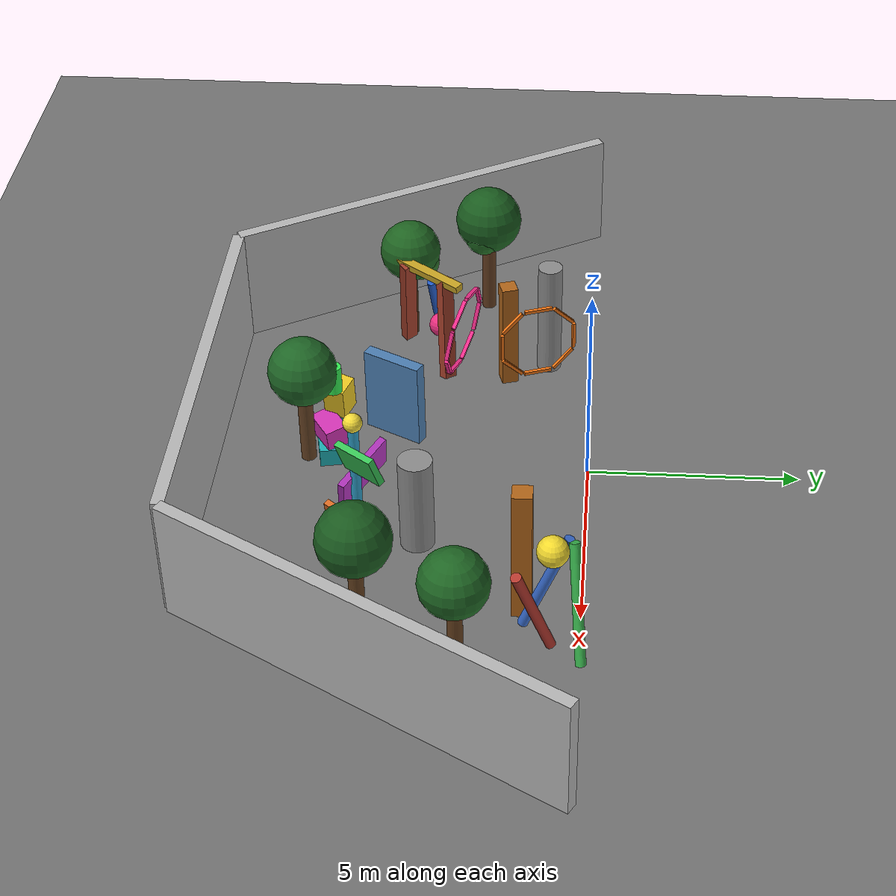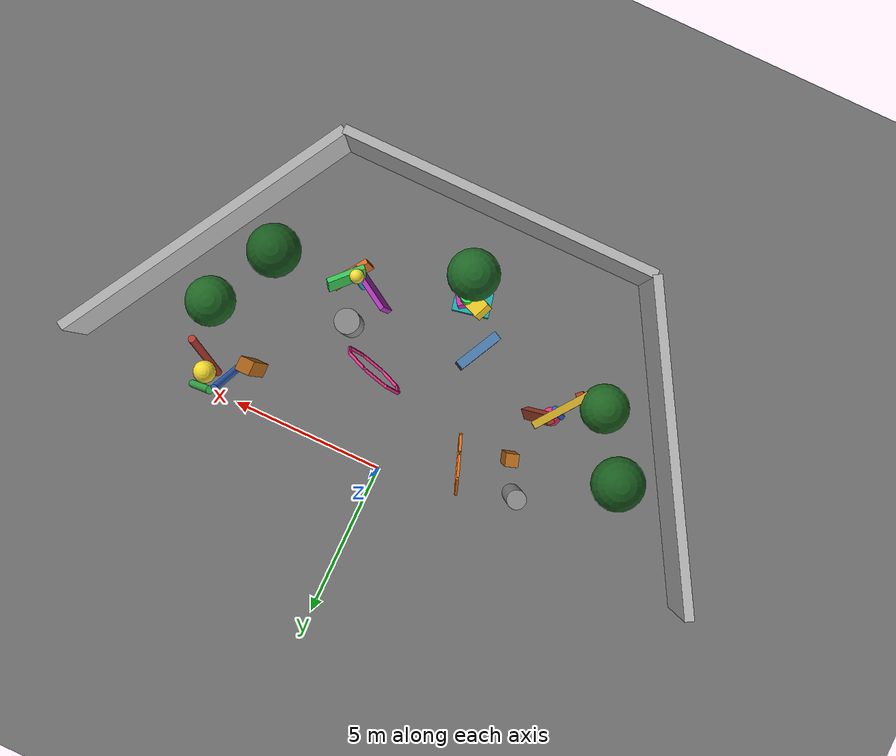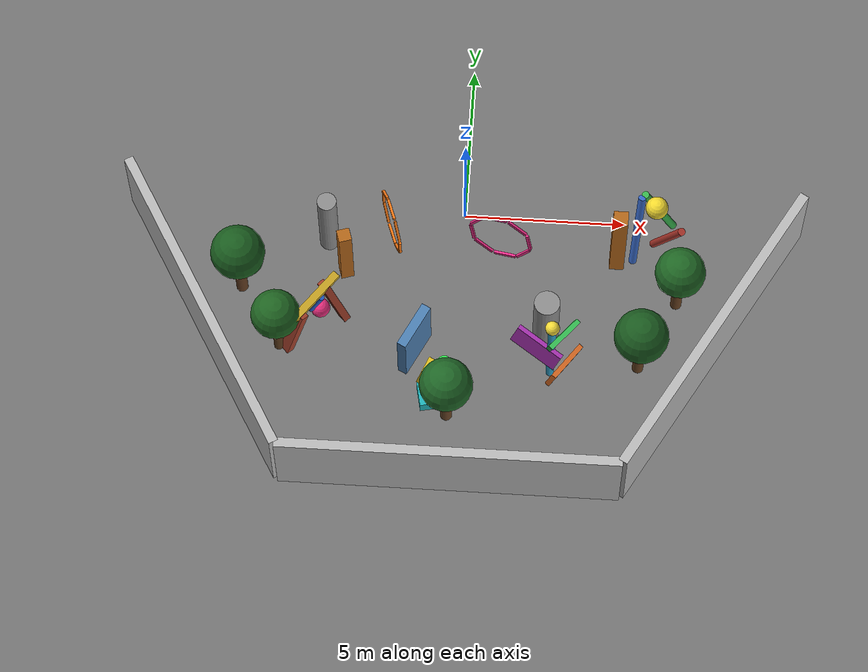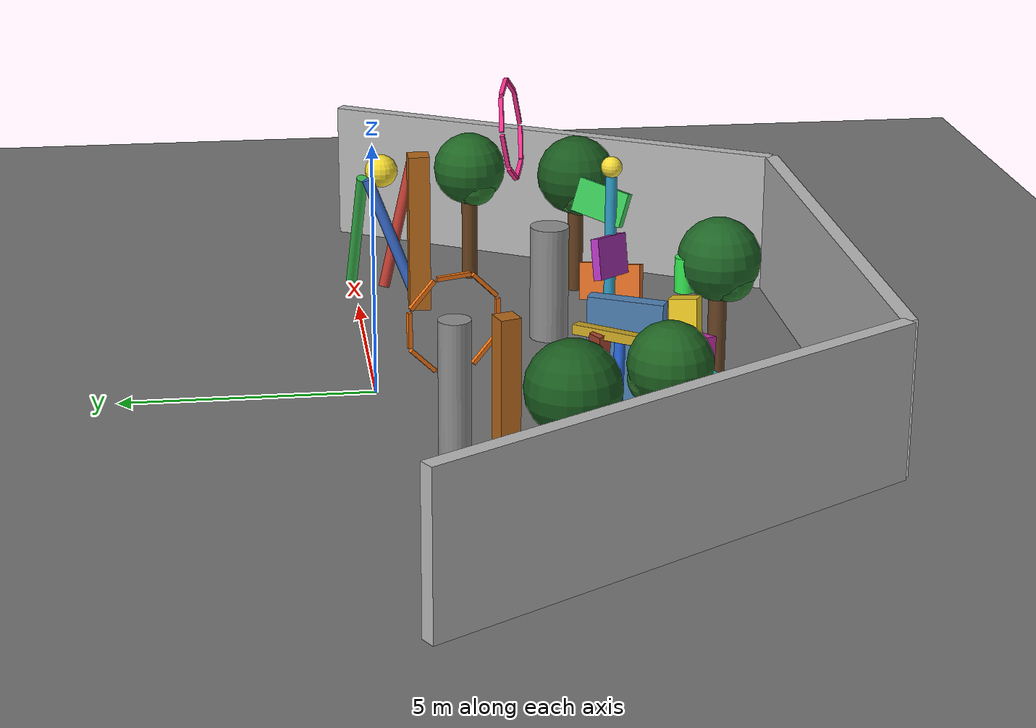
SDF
<sdf version="1.9">
 <world name="test">
  <model name="ground_plane">
   <static>true</static>
   <link name="link">
    <collision name="collision">
     <geometry><plane><normal>0 0 1</normal><size>100 100</size></plane></geometry>
    </collision>
    <visual name="visual">
     <geometry><plane><normal>0 0 1</normal><size>100 100</size></plane></geometry>
     <material>
      <lighting>true</lighting>
      <ambient>0.45 0.45 0.45 1</ambient>
      <diffuse>0.45 0.45 0.45 1</diffuse>
      <specular>0.0 0.0 0.0 1</specular>
     </material>
    </visual>
   </link>
  </model>
  <model name="wall_2">
   <static>true</static>
   <pose>-7.79 -4.5 1.5 0 0 2.0944</pose>
   <link name="link">
    <collision name="c"><geometry><box><size>10.39 0.3 3.0</size></box></geometry></collision>
    <visual name="v"><geometry><box><size>10.39 0.3 3.0</size></box></geometry></visual>
   </link>
  </model>
  <model name="wall_3">
   <static>true</static>
   <pose>0 -9.0 1.5 0 0 3.1416</pose>
   <link name="link">
    <collision name="c"><geometry><box><size>10.39 0.3 3.0</size></box></geometry></collision>
    <visual name="v"><geometry><box><size>10.39 0.3 3.0</size></box></geometry></visual>
   </link>
  </model>
  <model name="wall_4">
   <static>true</static>
   <pose>7.79 -4.5 1.5 0 0 -2.0944</pose>
   <link name="link">
    <collision name="c"><geometry><box><size>10.39 0.3 3.0</size></box></geometry></collision>
    <visual name="v"><geometry><box><size>10.39 0.3 3.0</size></box></geometry></visual>
   </link>
  </model>
  <model name="obs_box_2">
   <static>true</static>
   <pose>-3.6 -2.1 1.4 0 0 0.3</pose>
   <link name="link">
    <collision name="c"><geometry><box><size>0.4 0.4 2.8</size></box></geometry></collision>
    <visual name="v">
     <geometry><box><size>0.4 0.4 2.8</size></box></geometry>
     <material><ambient>0.7 0.4 0.1 1</ambient><diffuse>0.7 0.4 0.1 1</diffuse></material>
    </visual>
   </link>
  </model>
  <model name="obs_box_3">
   <static>true</static>
   <pose>-1.3 -4.7 1.1 0 0 1.1</pose>
   <link name="link">
    <collision name="c"><geometry><box><size>1.5 0.3 2.2</size></box></geometry></collision>
    <visual name="v">
     <geometry><box><size>1.5 0.3 2.2</size></box></geometry>
     <material><ambient>0.3 0.5 0.7 1</ambient><diffuse>0.3 0.5 0.7 1</diffuse></material>
    </visual>
   </link>
  </model>
  <model name="obs_cyl_2">
   <static>true</static>
   <pose>2.7 -3.8 1.2 0 0 0</pose>
   <link name="link">
    <collision name="c">
     <geometry><cylinder><radius>0.4</radius><length>2.4</length></cylinder></geometry>
    </collision>
    <visual name="v">
     <geometry><cylinder><radius>0.4</radius><length>2.4</length></cylinder></geometry>
     <material><ambient>0.55 0.55 0.55 1</ambient><diffuse>0.55 0.55 0.55 1</diffuse></material>
    </visual>
   </link>
  </model>
  <model name="obs_box_4">
   <static>true</static>
   <pose>4.8 -1.3 1.7 0 0 0</pose>
   <link name="link">
    <collision name="c"><geometry><box><size>0.45 0.45 3.4</size></box></geometry></collision>
    <visual name="v">
     <geometry><box><size>0.45 0.45 3.4</size></box></geometry>
     <material><ambient>0.7 0.4 0.1 1</ambient><diffuse>0.7 0.4 0.1 1</diffuse></material>
    </visual>
   </link>
  </model>
  <model name="obs_cyl_3">
   <static>true</static>
   <pose>-4.2 -1.1 1.5 0 0 0</pose>
   <link name="link">
    <collision name="c">
     <geometry><cylinder><radius>0.3</radius><length>3.0</length></cylinder></geometry>
    </collision>
    <visual name="v">
     <geometry><cylinder><radius>0.3</radius><length>3.0</length></cylinder></geometry>
     <material><ambient>0.55 0.55 0.55 1</ambient><diffuse>0.55 0.55 0.55 1</diffuse></material>
    </visual>
   </link>
  </model>
  <model name="tree_2">
   <static>true</static>
   <pose>-5.5 -4.7 0 0 0 0.45</pose>
   <link name="link">
    <collision name="trunk">
     <pose>0 0 1.15 0 0 0</pose>
     <geometry><cylinder><radius>0.15</radius><length>2.3</length></cylinder></geometry>
    </collision>
    <collision name="canopy">
     <pose>0 0 2.5 0 0 0</pose>
     <geometry><sphere><radius>0.72</radius></sphere></geometry>
    </collision>
    <visual name="trunk_visual">
     <pose>0 0 1.15 0 0 0</pose>
     <geometry><cylinder><radius>0.15</radius><length>2.3</length></cylinder></geometry>
     <material><ambient>0.36 0.23 0.11 1</ambient><diffuse>0.36 0.23 0.11 1</diffuse></material>
    </visual>
    <visual name="canopy_visual">
     <pose>0 0 2.5 0 0 0</pose>
     <geometry><sphere><radius>0.76</radius></sphere></geometry>
     <material><ambient>0.12 0.39 0.13 1</ambient><diffuse>0.12 0.39 0.13 1</diffuse></material>
    </visual>
    <visual name="canopy_visual_side">
     <pose>0.18 0.22 2.22 0 0 0</pose>
     <geometry><sphere><radius>0.46</radius></sphere></geometry>
     <material><ambient>0.18 0.46 0.17 1</ambient><diffuse>0.18 0.46 0.17 1</diffuse></material>
    </visual>
   </link>
  </model>
  <model name="tree_3">
   <static>true</static>
   <pose>5.6 -4.8 0 0 0 -0.4</pose>
   <link name="link">
    <collision name="trunk">
     <pose>0 0 1.2 0 0 0</pose>
     <geometry><cylinder><radius>0.17</radius><length>2.4</length></cylinder></geometry>
    </collision>
    <collision name="canopy">
     <pose>0 0 2.6 0 0 0</pose>
     <geometry><sphere><radius>0.8</radius></sphere></geometry>
    </collision>
    <visual name="trunk_visual">
     <pose>0 0 1.2 0 0 0</pose>
     <geometry><cylinder><radius>0.17</radius><length>2.4</length></cylinder></geometry>
     <material><ambient>0.39 0.25 0.12 1</ambient><diffuse>0.39 0.25 0.12 1</diffuse></material>
    </visual>
    <visual name="canopy_visual">
     <pose>0 0 2.6 0 0 0</pose>
     <geometry><sphere><radius>0.84</radius></sphere></geometry>
     <material><ambient>0.1 0.35 0.12 1</ambient><diffuse>0.1 0.35 0.12 1</diffuse></material>
    </visual>
    <visual name="canopy_visual_side">
     <pose>-0.26 -0.16 2.3 0 0 0</pose>
     <geometry><sphere><radius>0.5</radius></sphere></geometry>
     <material><ambient>0.15 0.41 0.16 1</ambient><diffuse>0.15 0.41 0.16 1</diffuse></material>
    </visual>
   </link>
  </model>
  <model name="tree_5">
   <static>true</static>
   <pose>-0.2 -6.7 0 0 0 0.15</pose>
   <link name="link">
    <collision name="trunk">
     <pose>0 0 1.15 0 0 0</pose>
     <geometry><cylinder><radius>0.18</radius><length>2.3</length></cylinder></geometry>
    </collision>
    <collision name="canopy">
     <pose>0 0 2.55 0 0 0</pose>
     <geometry><sphere><radius>0.78</radius></sphere></geometry>
    </collision>
    <visual name="trunk_visual">
     <pose>0 0 1.15 0 0 0</pose>
     <geometry><cylinder><radius>0.18</radius><length>2.3</length></cylinder></geometry>
     <material><ambient>0.4 0.26 0.14 1</ambient><diffuse>0.4 0.26 0.14 1</diffuse></material>
    </visual>
    <visual name="canopy_visual">
     <pose>0 0 2.55 0 0 0</pose>
     <geometry><sphere><radius>0.82</radius></sphere></geometry>
     <material><ambient>0.12 0.4 0.15 1</ambient><diffuse>0.12 0.4 0.15 1</diffuse></material>
    </visual>
    <visual name="canopy_visual_side">
     <pose>-0.24 -0.14 2.24 0 0 0</pose>
     <geometry><sphere><radius>0.48</radius></sphere></geometry>
     <material><ambient>0.16 0.47 0.18 1</ambient><diffuse>0.16 0.47 0.18 1</diffuse></material>
    </visual>
   </link>
  </model>
  <model name="tree_8">
   <static>true</static>
   <pose>-6.8 -2.8 0 0 0 0.35</pose>
   <link name="link">
    <collision name="trunk">
     <pose>0 0 1.22 0 0 0</pose>
     <geometry><cylinder><radius>0.18</radius><length>2.44</length></cylinder></geometry>
    </collision>
    <collision name="canopy">
     <pose>0 0 2.66 0 0 0</pose>
     <geometry><sphere><radius>0.8</radius></sphere></geometry>
    </collision>
    <visual name="trunk_visual">
     <pose>0 0 1.22 0 0 0</pose>
     <geometry><cylinder><radius>0.18</radius><length>2.44</length></cylinder></geometry>
     <material><ambient>0.39 0.24 0.13 1</ambient><diffuse>0.39 0.24 0.13 1</diffuse></material>
    </visual>
    <visual name="canopy_visual">
     <pose>0 0 2.66 0 0 0</pose>
     <geometry><sphere><radius>0.84</radius></sphere></geometry>
     <material><ambient>0.1 0.36 0.12 1</ambient><diffuse>0.1 0.36 0.12 1</diffuse></material>
    </visual>
    <visual name="canopy_visual_side">
     <pose>0.24 -0.2 2.34 0 0 0</pose>
     <geometry><sphere><radius>0.48</radius></sphere></geometry>
     <material><ambient>0.14 0.43 0.15 1</ambient><diffuse>0.14 0.43 0.15 1</diffuse></material>
    </visual>
    <visual name="canopy_visual_low">
     <pose>-0.18 0.16 2.05 0 0 0</pose>
     <geometry><sphere><radius>0.44</radius></sphere></geometry>
     <material><ambient>0.17 0.46 0.16 1</ambient><diffuse>0.17 0.46 0.16 1</diffuse></material>
    </visual>
   </link>
  </model>
  <model name="tree_9">
   <static>true</static>
   <pose>6.7 -2.6 0 0 0 -0.22</pose>
   <link name="link">
    <collision name="trunk">
     <pose>0 0 1.16 0 0 0</pose>
     <geometry><cylinder><radius>0.17</radius><length>2.32</length></cylinder></geometry>
    </collision>
    <collision name="canopy">
     <pose>0 0 2.5 0 0 0</pose>
     <geometry><sphere><radius>0.74</radius></sphere></geometry>
    </collision>
    <visual name="trunk_visual">
     <pose>0 0 1.16 0 0 0</pose>
     <geometry><cylinder><radius>0.17</radius><length>2.32</length></cylinder></geometry>
     <material><ambient>0.4 0.25 0.12 1</ambient><diffuse>0.4 0.25 0.12 1</diffuse></material>
    </visual>
    <visual name="canopy_visual">
     <pose>0 0 2.5 0 0 0</pose>
     <geometry><sphere><radius>0.78</radius></sphere></geometry>
     <material><ambient>0.12 0.4 0.14 1</ambient><diffuse>0.12 0.4 0.14 1</diffuse></material>
    </visual>
    <visual name="canopy_visual_side">
     <pose>-0.22 -0.16 2.2 0 0 0</pose>
     <geometry><sphere><radius>0.46</radius></sphere></geometry>
     <material><ambient>0.16 0.47 0.17 1</ambient><diffuse>0.16 0.47 0.17 1</diffuse></material>
    </visual>
    <visual name="canopy_visual_high">
     <pose>0.14 0.14 2.82 0 0 0</pose>
     <geometry><sphere><radius>0.32</radius></sphere></geometry>
     <material><ambient>0.19 0.53 0.21 1</ambient><diffuse>0.19 0.53 0.21 1</diffuse></material>
    </visual>
   </link>
  </model>
  <model name="weird_tripod_0">
   <static>true</static>
   <pose>5.9 -0.6 0 0 0 -0.75</pose>
   <link name="link">
    <collision name="leg_0">
     <pose>0.55 0 1.4 0 0.38 0</pose>
     <geometry><cylinder><radius>0.12</radius><length>2.8</length></cylinder></geometry>
    </collision>
    <collision name="leg_1">
     <pose>-0.28 0.48 1.4 -0.33 -0.16 2.1</pose>
     <geometry><cylinder><radius>0.12</radius><length>2.8</length></cylinder></geometry>
    </collision>
    <collision name="leg_2">
     <pose>-0.28 -0.48 1.4 0.33 -0.16 -2.1</pose>
     <geometry><cylinder><radius>0.12</radius><length>2.8</length></cylinder></geometry>
    </collision>
    <collision name="core">
     <pose>0 0 2.75 0 0 0</pose>
     <geometry><sphere><radius>0.35</radius></sphere></geometry>
    </collision>
    <visual name="leg_0_visual">
     <pose>0.55 0 1.4 0 0.38 0</pose>
     <geometry><cylinder><radius>0.12</radius><length>2.8</length></cylinder></geometry>
     <material><ambient>0.7 0.22 0.18 1</ambient><diffuse>0.7 0.22 0.18 1</diffuse></material>
    </visual>
    <visual name="leg_1_visual">
     <pose>-0.28 0.48 1.4 -0.33 -0.16 2.1</pose>
     <geometry><cylinder><radius>0.12</radius><length>2.8</length></cylinder></geometry>
     <material><ambient>0.22 0.7 0.3 1</ambient><diffuse>0.22 0.7 0.3 1</diffuse></material>
    </visual>
    <visual name="leg_2_visual">
     <pose>-0.28 -0.48 1.4 0.33 -0.16 -2.1</pose>
     <geometry><cylinder><radius>0.12</radius><length>2.8</length></cylinder></geometry>
     <material><ambient>0.22 0.42 0.8 1</ambient><diffuse>0.22 0.42 0.8 1</diffuse></material>
    </visual>
    <visual name="core_visual">
     <pose>0 0 2.75 0 0 0</pose>
     <geometry><sphere><radius>0.35</radius></sphere></geometry>
     <material><ambient>0.95 0.85 0.18 1</ambient><diffuse>0.95 0.85 0.18 1</diffuse></material>
    </visual>
   </link>
  </model>
  <model name="weird_stack_0">
   <static>true</static>
   <pose>-0.5 -6.1 0 0 0 0.2</pose>
   <link name="link">
    <collision name="base">
     <pose>0 0 0.225 0 0 0</pose>
     <geometry><box><size>1.2 0.8 0.45</size></box></geometry>
    </collision>
    <collision name="mid">
     <pose>0.15 -0.1 0.75 0.12 0.08 0.4</pose>
     <geometry><box><size>0.8 0.55 0.6</size></box></geometry>
    </collision>
    <collision name="top">
     <pose>-0.18 0.18 1.5 -0.08 0.18 -0.6</pose>
     <geometry><box><size>0.55 0.55 0.9</size></box></geometry>
    </collision>
    <collision name="cap">
     <pose>0.22 0.05 2.3 0 0 0</pose>
     <geometry><cylinder><radius>0.2</radius><length>0.7</length></cylinder></geometry>
    </collision>
    <visual name="base_visual">
     <pose>0 0 0.225 0 0 0</pose>
     <geometry><box><size>1.2 0.8 0.45</size></box></geometry>
     <material><ambient>0.12 0.7 0.72 1</ambient><diffuse>0.12 0.7 0.72 1</diffuse></material>
    </visual>
    <visual name="mid_visual">
     <pose>0.15 -0.1 0.75 0.12 0.08 0.4</pose>
     <geometry><box><size>0.8 0.55 0.6</size></box></geometry>
     <material><ambient>0.82 0.2 0.7 1</ambient><diffuse>0.82 0.2 0.7 1</diffuse></material>
    </visual>
    <visual name="top_visual">
     <pose>-0.18 0.18 1.5 -0.08 0.18 -0.6</pose>
     <geometry><box><size>0.55 0.55 0.9</size></box></geometry>
     <material><ambient>0.92 0.78 0.14 1</ambient><diffuse>0.92 0.78 0.14 1</diffuse></material>
    </visual>
    <visual name="cap_visual">
     <pose>0.22 0.05 2.3 0 0 0</pose>
     <geometry><cylinder><radius>0.2</radius><length>0.7</length></cylinder></geometry>
     <material><ambient>0.2 0.92 0.32 1</ambient><diffuse>0.2 0.92 0.32 1</diffuse></material>
    </visual>
   </link>
  </model>
  <model name="weird_pendulum_0">
   <static>true</static>
   <pose>-4.4 -4.2 0 0 0 0.75</pose>
   <link name="link">
    <collision name="left_leg">
     <pose>-0.78 0 1.32 0.12 0.18 0</pose>
     <geometry><box><size>0.24 0.34 2.64</size></box></geometry>
    </collision>
    <collision name="right_leg">
     <pose>0.78 0 1.32 -0.12 -0.18 0</pose>
     <geometry><box><size>0.24 0.34 2.64</size></box></geometry>
    </collision>
    <collision name="top_bar">
     <pose>0 0 2.58 0.08 0 0.18</pose>
     <geometry><box><size>2.2 0.24 0.18</size></box></geometry>
    </collision>
    <collision name="drop_bar">
     <pose>0.18 0.1 1.88 0.3 0.1 0.24</pose>
     <geometry><cylinder><radius>0.1</radius><length>1.24</length></cylinder></geometry>
    </collision>
    <collision name="weight">
     <pose>0.36 0.16 1.12 0 0 0</pose>
     <geometry><sphere><radius>0.3</radius></sphere></geometry>
    </collision>
    <visual name="left_leg_visual">
     <pose>-0.78 0 1.32 0.12 0.18 0</pose>
     <geometry><box><size>0.24 0.34 2.64</size></box></geometry>
     <material><ambient>0.62 0.24 0.16 1</ambient><diffuse>0.62 0.24 0.16 1</diffuse></material>
    </visual>
    <visual name="right_leg_visual">
     <pose>0.78 0 1.32 -0.12 -0.18 0</pose>
     <geometry><box><size>0.24 0.34 2.64</size></box></geometry>
     <material><ambient>0.62 0.24 0.16 1</ambient><diffuse>0.62 0.24 0.16 1</diffuse></material>
    </visual>
    <visual name="top_bar_visual">
     <pose>0 0 2.58 0.08 0 0.18</pose>
     <geometry><box><size>2.2 0.24 0.18</size></box></geometry>
     <material><ambient>0.78 0.64 0.14 1</ambient><diffuse>0.78 0.64 0.14 1</diffuse></material>
    </visual>
    <visual name="drop_bar_visual">
     <pose>0.18 0.1 1.88 0.3 0.1 0.24</pose>
     <geometry><cylinder><radius>0.1</radius><length>1.24</length></cylinder></geometry>
     <material><ambient>0.14 0.36 0.78 1</ambient><diffuse>0.14 0.36 0.78 1</diffuse></material>
    </visual>
    <visual name="weight_visual">
     <pose>0.36 0.16 1.12 0 0 0</pose>
     <geometry><sphere><radius>0.3</radius></sphere></geometry>
     <material><ambient>0.92 0.18 0.5 1</ambient><diffuse>0.92 0.18 0.5 1</diffuse></material>
    </visual>
   </link>
  </model>
  <model name="weird_slalom_0">
   <static>true</static>
   <pose>2.9 -5.1 0 0 0 0.18</pose>
   <link name="link">
    <collision name="mast">
     <pose>0 0 1.7 0 0 0</pose>
     <geometry><cylinder><radius>0.12</radius><length>3.4</length></cylinder></geometry>
    </collision>
    <collision name="panel_low">
     <pose>0.4 -0.18 0.92 0.22 0.12 0.78</pose>
     <geometry><box><size>1.4 0.16 0.78</size></box></geometry>
    </collision>
    <collision name="panel_mid">
     <pose>-0.42 0.16 1.78 -0.18 0.2 -0.72</pose>
     <geometry><box><size>1.6 0.16 0.84</size></box></geometry>
    </collision>
    <collision name="panel_high">
     <pose>0.36 0.08 2.7 0.28 -0.14 0.64</pose>
     <geometry><box><size>1.2 0.16 0.72</size></box></geometry>
    </collision>
    <collision name="top_ball">
     <pose>0 0 3.55 0 0 0</pose>
     <geometry><sphere><radius>0.22</radius></sphere></geometry>
    </collision>
    <visual name="mast_visual">
     <pose>0 0 1.7 0 0 0</pose>
     <geometry><cylinder><radius>0.12</radius><length>3.4</length></cylinder></geometry>
     <material><ambient>0.18 0.62 0.78 1</ambient><diffuse>0.18 0.62 0.78 1</diffuse></material>
    </visual>
    <visual name="panel_low_visual">
     <pose>0.4 -0.18 0.92 0.22 0.12 0.78</pose>
     <geometry><box><size>1.4 0.16 0.78</size></box></geometry>
     <material><ambient>0.86 0.42 0.14 1</ambient><diffuse>0.86 0.42 0.14 1</diffuse></material>
    </visual>
    <visual name="panel_mid_visual">
     <pose>-0.42 0.16 1.78 -0.18 0.2 -0.72</pose>
     <geometry><box><size>1.6 0.16 0.84</size></box></geometry>
     <material><ambient>0.68 0.2 0.72 1</ambient><diffuse>0.68 0.2 0.72 1</diffuse></material>
    </visual>
    <visual name="panel_high_visual">
     <pose>0.36 0.08 2.7 0.28 -0.14 0.64</pose>
     <geometry><box><size>1.2 0.16 0.72</size></box></geometry>
     <material><ambient>0.22 0.78 0.34 1</ambient><diffuse>0.22 0.78 0.34 1</diffuse></material>
    </visual>
    <visual name="top_ball_visual">
     <pose>0 0 3.55 0 0 0</pose>
     <geometry><sphere><radius>0.22</radius></sphere></geometry>
     <material><ambient>0.96 0.86 0.22 1</ambient><diffuse>0.96 0.86 0.22 1</diffuse></material>
    </visual>
   </link>
  </model>
  <model name="air_ring_0">
   <static>true</static>
   <pose>-2.2 -1.3 2.2 0 0 0.35</pose>
   <link name="link">
    <collision name="segment_0_collision">
     <pose>0 0.9 0 1.5708 0 0</pose>
     <geometry><box><size>0.08 0.68 0.08</size></box></geometry>
    </collision>
    <collision name="segment_1_collision">
     <pose>0 0.6364 0.6364 2.3562 0 0</pose>
     <geometry><box><size>0.08 0.68 0.08</size></box></geometry>
    </collision>
    <collision name="segment_2_collision">
     <pose>0 0 0.9 3.1416 0 0</pose>
     <geometry><box><size>0.08 0.68 0.08</size></box></geometry>
    </collision>
    <collision name="segment_3_collision">
     <pose>0 -0.6364 0.6364 -2.3562 0 0</pose>
     <geometry><box><size>0.08 0.68 0.08</size></box></geometry>
    </collision>
    <collision name="segment_4_collision">
     <pose>0 -0.9 0 -1.5708 0 0</pose>
     <geometry><box><size>0.08 0.68 0.08</size></box></geometry>
    </collision>
    <collision name="segment_5_collision">
     <pose>0 -0.6364 -0.6364 -0.7854 0 0</pose>
     <geometry><box><size>0.08 0.68 0.08</size></box></geometry>
    </collision>
    <collision name="segment_6_collision">
     <pose>0 0 -0.9 0 0 0</pose>
     <geometry><box><size>0.08 0.68 0.08</size></box></geometry>
    </collision>
    <collision name="segment_7_collision">
     <pose>0 0.6364 -0.6364 0.7854 0 0</pose>
     <geometry><box><size>0.08 0.68 0.08</size></box></geometry>
    </collision>
    <visual name="segment_0_visual">
     <pose>0 0.9 0 1.5708 0 0</pose>
     <geometry><box><size>0.08 0.68 0.08</size></box></geometry>
     <material>
      <ambient>0.95 0.46 0.08 1</ambient>
      <diffuse>0.95 0.46 0.08 1</diffuse>
      <emissive>0.15 0.05 0.0 1</emissive>
     </material>
    </visual>
    <visual name="segment_1_visual">
     <pose>0 0.6364 0.6364 2.3562 0 0</pose>
     <geometry><box><size>0.08 0.68 0.08</size></box></geometry>
     <material>
      <ambient>0.95 0.46 0.08 1</ambient>
      <diffuse>0.95 0.46 0.08 1</diffuse>
      <emissive>0.15 0.05 0.0 1</emissive>
     </material>
    </visual>
    <visual name="segment_2_visual">
     <pose>0 0 0.9 3.1416 0 0</pose>
     <geometry><box><size>0.08 0.68 0.08</size></box></geometry>
     <material>
      <ambient>0.95 0.46 0.08 1</ambient>
      <diffuse>0.95 0.46 0.08 1</diffuse>
      <emissive>0.15 0.05 0.0 1</emissive>
     </material>
    </visual>
    <visual name="segment_3_visual">
     <pose>0 -0.6364 0.6364 -2.3562 0 0</pose>
     <geometry><box><size>0.08 0.68 0.08</size></box></geometry>
     <material>
      <ambient>0.95 0.46 0.08 1</ambient>
      <diffuse>0.95 0.46 0.08 1</diffuse>
      <emissive>0.15 0.05 0.0 1</emissive>
     </material>
    </visual>
    <visual name="segment_4_visual">
     <pose>0 -0.9 0 -1.5708 0 0</pose>
     <geometry><box><size>0.08 0.68 0.08</size></box></geometry>
     <material>
      <ambient>0.95 0.46 0.08 1</ambient>
      <diffuse>0.95 0.46 0.08 1</diffuse>
      <emissive>0.15 0.05 0.0 1</emissive>
     </material>
    </visual>
    <visual name="segment_5_visual">
     <pose>0 -0.6364 -0.6364 -0.7854 0 0</pose>
     <geometry><box><size>0.08 0.68 0.08</size></box></geometry>
     <material>
      <ambient>0.95 0.46 0.08 1</ambient>
      <diffuse>0.95 0.46 0.08 1</diffuse>
      <emissive>0.15 0.05 0.0 1</emissive>
     </material>
    </visual>
    <visual name="segment_6_visual">
     <pose>0 0 -0.9 0 0 0</pose>
     <geometry><box><size>0.08 0.68 0.08</size></box></geometry>
     <material>
      <ambient>0.95 0.46 0.08 1</ambient>
      <diffuse>0.95 0.46 0.08 1</diffuse>
      <emissive>0.15 0.05 0.0 1</emissive>
     </material>
    </visual>
    <visual name="segment_7_visual">
     <pose>0 0.6364 -0.6364 0.7854 0 0</pose>
     <geometry><box><size>0.08 0.68 0.08</size></box></geometry>
     <material>
      <ambient>0.95 0.46 0.08 1</ambient>
      <diffuse>0.95 0.46 0.08 1</diffuse>
      <emissive>0.15 0.05 0.0 1</emissive>
     </material>
    </visual>
   </link>
  </model>
  <model name="air_ring_4">
   <static>true</static>
   <pose>1.2 -2.8 4.9 -0.22 0.14 1.28</pose>
   <link name="link">
    <collision name="segment_0_collision">
     <pose>0 0.9 0 1.5708 0 0</pose>
     <geometry><box><size>0.08 0.68 0.08</size></box></geometry>
    </collision>
    <collision name="segment_1_collision">
     <pose>0 0.6364 0.6364 2.3562 0 0</pose>
     <geometry><box><size>0.08 0.68 0.08</size></box></geometry>
    </collision>
    <collision name="segment_2_collision">
     <pose>0 0 0.9 3.1416 0 0</pose>
     <geometry><box><size>0.08 0.68 0.08</size></box></geometry>
    </collision>
    <collision name="segment_3_collision">
     <pose>0 -0.6364 0.6364 -2.3562 0 0</pose>
     <geometry><box><size>0.08 0.68 0.08</size></box></geometry>
    </collision>
    <collision name="segment_4_collision">
     <pose>0 -0.9 0 -1.5708 0 0</pose>
     <geometry><box><size>0.08 0.68 0.08</size></box></geometry>
    </collision>
    <collision name="segment_5_collision">
     <pose>0 -0.6364 -0.6364 -0.7854 0 0</pose>
     <geometry><box><size>0.08 0.68 0.08</size></box></geometry>
    </collision>
    <collision name="segment_6_collision">
     <pose>0 0 -0.9 0 0 0</pose>
     <geometry><box><size>0.08 0.68 0.08</size></box></geometry>
    </collision>
    <collision name="segment_7_collision">
     <pose>0 0.6364 -0.6364 0.7854 0 0</pose>
     <geometry><box><size>0.08 0.68 0.08</size></box></geometry>
    </collision>
    <visual name="segment_0_visual">
     <pose>0 0.9 0 1.5708 0 0</pose>
     <geometry><box><size>0.08 0.68 0.08</size></box></geometry>
     <material>
      <ambient>0.98 0.18 0.56 1</ambient>
      <diffuse>0.98 0.18 0.56 1</diffuse>
      <emissive>0.16 0.03 0.08 1</emissive>
     </material>
    </visual>
    <visual name="segment_1_visual">
     <pose>0 0.6364 0.6364 2.3562 0 0</pose>
     <geometry><box><size>0.08 0.68 0.08</size></box></geometry>
     <material>
      <ambient>0.98 0.18 0.56 1</ambient>
      <diffuse>0.98 0.18 0.56 1</diffuse>
      <emissive>0.16 0.03 0.08 1</emissive>
     </material>
    </visual>
    <visual name="segment_2_visual">
     <pose>0 0 0.9 3.1416 0 0</pose>
     <geometry><box><size>0.08 0.68 0.08</size></box></geometry>
     <material>
      <ambient>0.98 0.18 0.56 1</ambient>
      <diffuse>0.98 0.18 0.56 1</diffuse>
      <emissive>0.16 0.03 0.08 1</emissive>
     </material>
    </visual>
    <visual name="segment_3_visual">
     <pose>0 -0.6364 0.6364 -2.3562 0 0</pose>
     <geometry><box><size>0.08 0.68 0.08</size></box></geometry>
     <material>
      <ambient>0.98 0.18 0.56 1</ambient>
      <diffuse>0.98 0.18 0.56 1</diffuse>
      <emissive>0.16 0.03 0.08 1</emissive>
     </material>
    </visual>
    <visual name="segment_4_visual">
     <pose>0 -0.9 0 -1.5708 0 0</pose>
     <geometry><box><size>0.08 0.68 0.08</size></box></geometry>
     <material>
      <ambient>0.98 0.18 0.56 1</ambient>
      <diffuse>0.98 0.18 0.56 1</diffuse>
      <emissive>0.16 0.03 0.08 1</emissive>
     </material>
    </visual>
    <visual name="segment_5_visual">
     <pose>0 -0.6364 -0.6364 -0.7854 0 0</pose>
     <geometry><box><size>0.08 0.68 0.08</size></box></geometry>
     <material>
      <ambient>0.98 0.18 0.56 1</ambient>
      <diffuse>0.98 0.18 0.56 1</diffuse>
      <emissive>0.16 0.03 0.08 1</emissive>
     </material>
    </visual>
    <visual name="segment_6_visual">
     <pose>0 0 -0.9 0 0 0</pose>
     <geometry><box><size>0.08 0.68 0.08</size></box></geometry>
     <material>
      <ambient>0.98 0.18 0.56 1</ambient>
      <diffuse>0.98 0.18 0.56 1</diffuse>
      <emissive>0.16 0.03 0.08 1</emissive>
     </material>
    </visual>
    <visual name="segment_7_visual">
     <pose>0 0.6364 -0.6364 0.7854 0 0</pose>
     <geometry><box><size>0.08 0.68 0.08</size></box></geometry>
     <material>
      <ambient>0.98 0.18 0.56 1</ambient>
      <diffuse>0.98 0.18 0.56 1</diffuse>
      <emissive>0.16 0.03 0.08 1</emissive>
     </material>
    </visual>
   </link>
  </model>
 </world>
</sdf>
